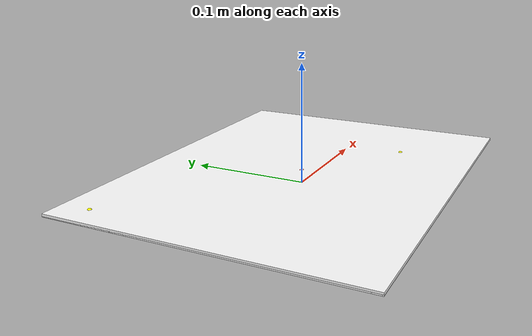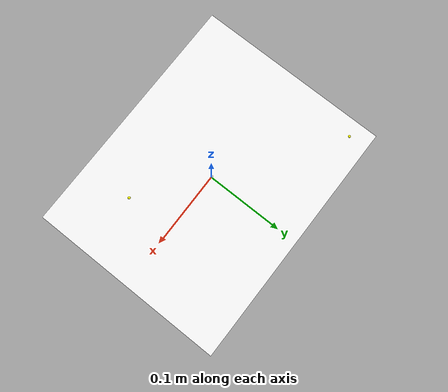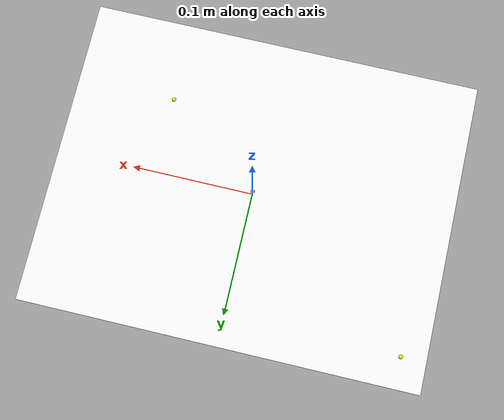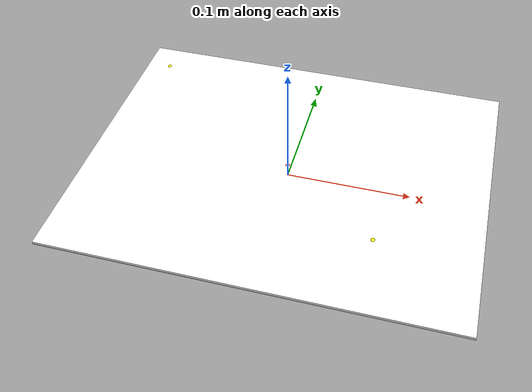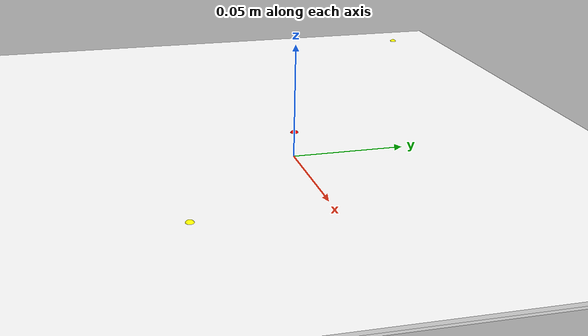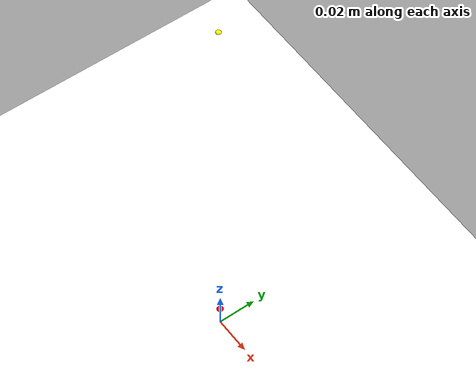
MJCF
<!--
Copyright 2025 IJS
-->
<mujoco model="calibration_board">
  <compiler angle="radian" meshdir="assets/" texturedir="assets/"/>

  <asset>
    <texture name="charuco_tex" type="2d"  file="charuco_320x250_5x7_40_30_DICT_4x4.png"/>
    <texture name="checker_tex" type="2d"  file="checker_320x250_5x6_40.png"/>
    <material name="charuco_mat"   texture="charuco_tex"   texrepeat="1 1"   rgba="1 1 1 1"/>
    <material name="checker_mat"   texture="checker_tex"   texrepeat="1 1"   rgba="1 1 1 1"/>
  </asset>

  <worldbody>

    <body name="calib_charuco" pos="0 0 0.01">
      <geom group="0" name="charuco_pattern" type="box" size="0.16 0.125 0.001" pos="0 0 0.00" material="charuco_mat" rgba="1 1 1 1" contype="0" conaffinity="0"/>
      <geom group="1" name="charuco_back" type="box" size="0.16 0.125 0.0005" pos="0 0 -0.001" rgba="1 1 1 1" contype="0" conaffinity="0"/>
      <!-- Optional site at board center -->
      <site name="charuco_center" pos="0 0 0" size="0.002" type="sphere" rgba="1 0 0 1"/>
      <site name="charuco_origin" pos="-0.14 0.1 0" quat="0 1 0 0" size="0.002" type="sphere" rgba="1 1 0 1"/>
    </body>

    <body name="calib_checker" pos="0 0 0.01">
      <geom group="1" name="checker_pattern" type="box" size="0.16 0.125 0.001" pos="0 0 0.00" material="checker_mat" rgba="1 1 1 1" contype="0" conaffinity="0"/>
      <geom group="1" name="checker_back" type="box" size="0.16 0.125 0.0005" pos="0 0 -0.001" rgba="1 1 1 1" contype="0" conaffinity="0"/>
      <!-- Optional site at board center -->
      <site name="checker_center" pos="0 0 0" size="0.002" type="sphere" rgba="1 0 0 1"/>
      <site name="checker_origin" pos="0.08 -0.06 0" quat="0 0 -1 0" size="0.002" type="sphere" rgba="1 1 0 1"/>
    </body>

  </worldbody>
</mujoco>
